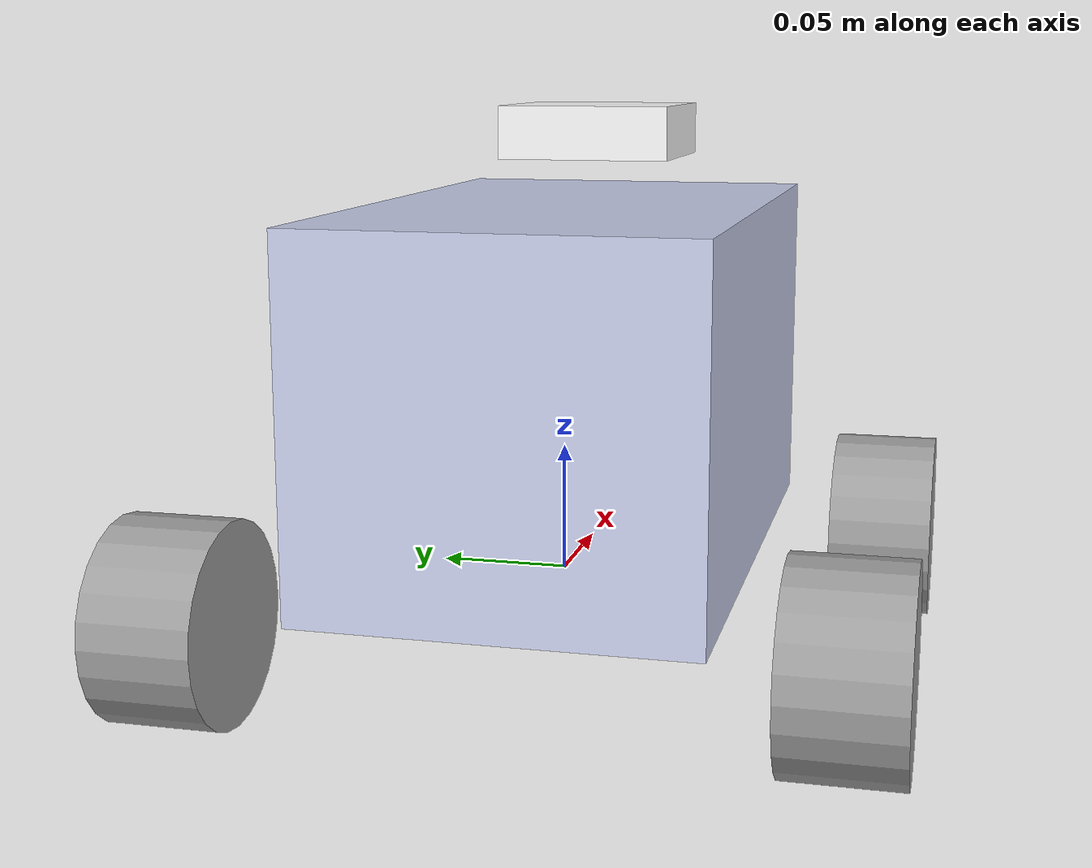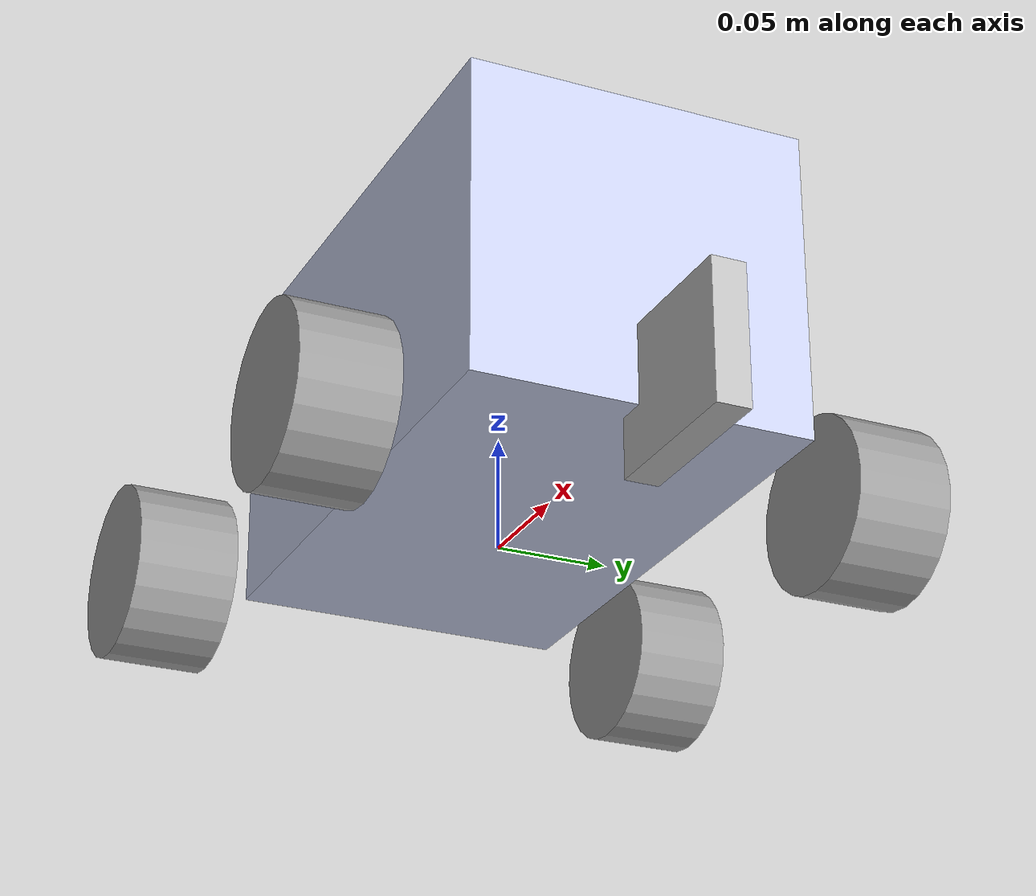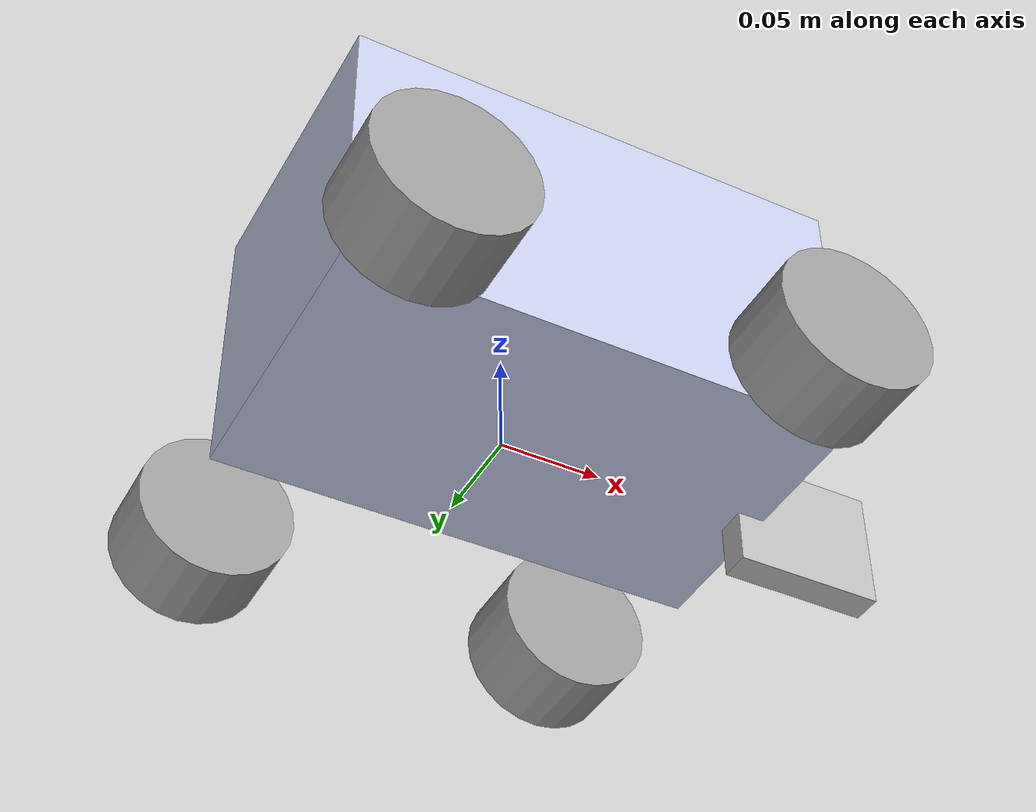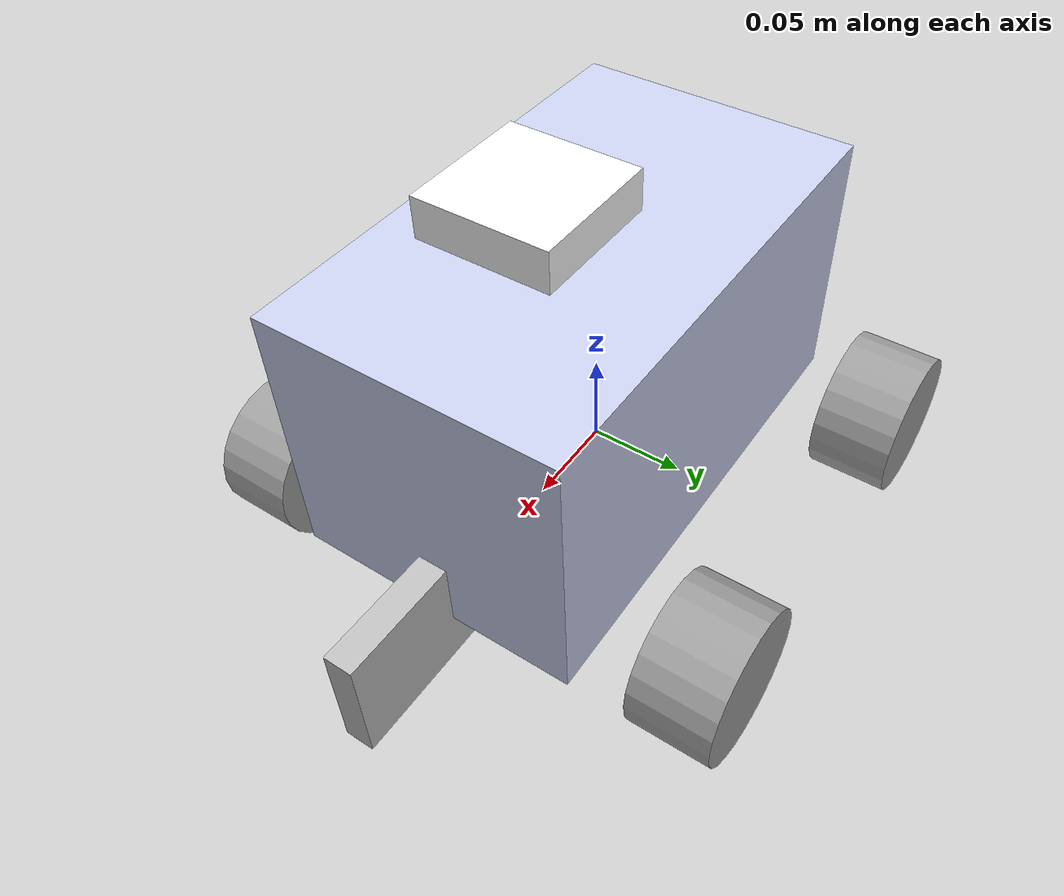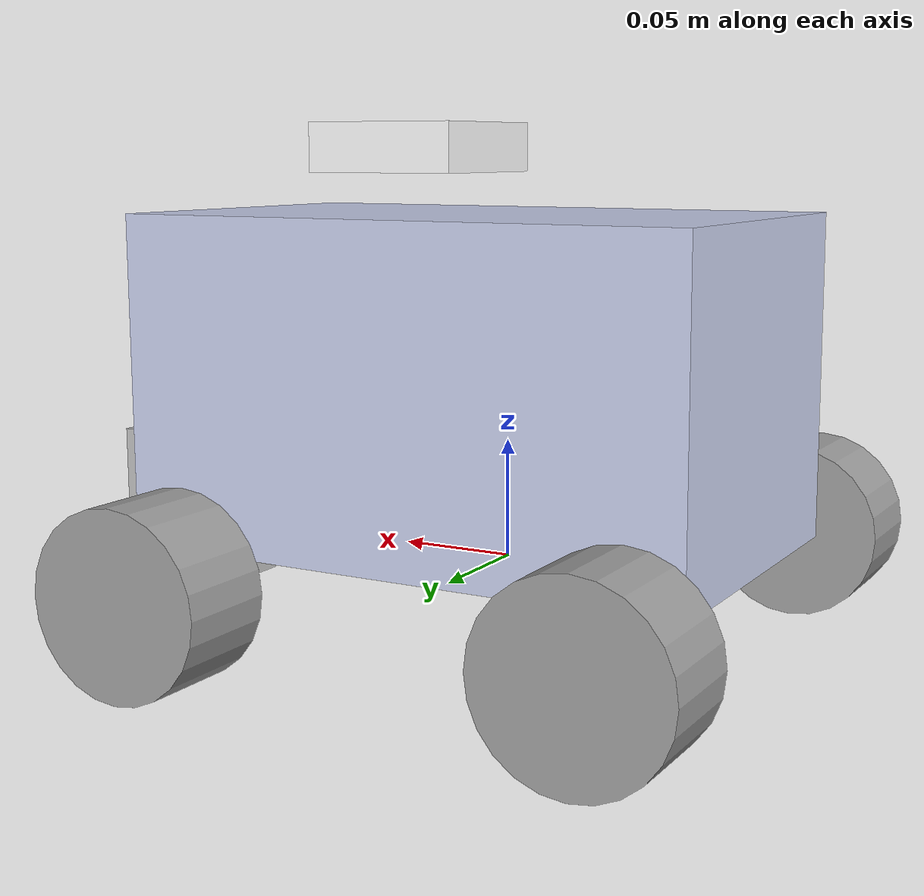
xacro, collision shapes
<?xml version="1.0"?>
<robot name="rover" xmlns:xacro="http://www.ros.org/wiki/xacro">
  <xacro:property name="mesh_dir" value="package://rover_description/meshes" />
  <xacro:property name="effort" value="100.0" />
  <xacro:property name="velocity" value="10.0" />
  <material name="mat_cad1eeff">
    <color rgba="0.792157 0.819608 0.933333 1" />
  </material>
  <material name="mat_a0a0a0ff">
    <color rgba="0.627451 0.627451 0.627451 1" />
  </material>
  <material name="mat_bfbfbfff">
    <color rgba="0.74902 0.74902 0.74902 1" />
  </material>
  <material name="mat_ffffffff">
    <color rgba="1 1 1 1" />
  </material>
  <link name="base_link">
    <inertial>
      <origin xyz="0.0123006 -0.000458994 0.0522336" rpy="0 0 0" />
      <mass value="4.64525" />
      <inertia ixx="0.0172817" iyy="0.0367358" izz="0.0356348" ixy="0.000552433" iyz="-0.000184288" ixz="-0.00178452" />
    </inertial>
    <visual>
      <origin xyz="-0.106381 0.0202749 0.00707771" rpy="1.5708 0 0" />
      <geometry>
        <mesh filename="${mesh_dir}/base_link_0_Body1.stl" scale="0.001 0.001 0.001" />
      </geometry>
      <material name="mat_cad1eeff" />
    </visual>
    <visual>
      <origin xyz="-0.106365 0.0202749 0.00711236" rpy="1.5708 0 0" />
      <geometry>
        <mesh filename="${mesh_dir}/base_link_1_Body2.stl" scale="0.001 0.001 0.001" />
      </geometry>
      <material name="mat_cad1eeff" />
    </visual>
    <visual>
      <origin xyz="-0.106353 0.0202749 0.00711277" rpy="1.5708 0 0" />
      <geometry>
        <mesh filename="${mesh_dir}/base_link_2_Body3.stl" scale="0.001 0.001 0.001" />
      </geometry>
      <material name="mat_cad1eeff" />
    </visual>
    <collision>
      <origin xyz="0.0135527 0.00019914 0.075" rpy="0 0 0" />
      <geometry>
        <box size="0.25 0.15 0.14" />
      </geometry>
    </collision>
  </link>
  <link name="fore_right_wheel">
    <inertial>
      <origin xyz="0.000244648 -0.0199956 0.000342114" rpy="0 0 0" />
      <mass value="1.42445" />
      <inertia ixx="0.000704201" iyy="0.00102831" izz="0.000704247" ixy="-3.96608e-06" iyz="-5.54614e-06" ixz="6.79202e-08" />
    </inertial>
    <visual>
      <origin xyz="-0.202496 -0.013323  -0.140697" rpy="1.5708 0 0" />
      <geometry>
        <mesh filename="${mesh_dir}/fore_right_wheel_0_Body1.stl" scale="0.001 0.001 0.001" />
      </geometry>
      <material name="mat_a0a0a0ff" />
    </visual>
    <collision>
      <origin xyz="0.000244648 -0.0199956 0.000342114" rpy="-1.5708 0 0" />
      <geometry>
        <cylinder radius="0.0383466" length="0.0416094" />
      </geometry>
    </collision>
  </link>
  <link name="back_right_wheel">
    <inertial>
      <origin xyz="0.000593035 -0.0199879 0.000362408" rpy="0 0 0" />
      <mass value="1.42445" />
      <inertia ixx="0.000704437" iyy="0.00102806" izz="0.000704259" ixy="-9.61023e-06" iyz="-5.87289e-06" ixz="1.74247e-07" />
    </inertial>
    <visual>
      <origin xyz="-0.001558 -0.043074 -0.094972" rpy="1.5708 0 0" />
      <geometry>
        <mesh filename="${mesh_dir}/back_right_wheel_0_Body1.stl" scale="0.001 0.001 0.001" />
      </geometry>
      <material name="mat_a0a0a0ff" />
    </visual>
    <collision>
      <origin xyz="0.000593035 -0.0199879 0.000362408" rpy="-1.5708 0 0" />
      <geometry>
        <cylinder radius="0.0385866" length="0.0436277" />
      </geometry>
    </collision>
  </link>
  <link name="Component87">
    <inertial>
      <origin xyz="-0.00062017 0.0199904 -1.44118e-05" rpy="0 0 0" />
      <mass value="1.42445" />
      <inertia ixx="0.000704464" iyy="0.00102814" izz="0.000704153" ixy="-1.00512e-05" iyz="-2.33575e-07" ixz="7.24631e-09" />
    </inertial>
    <visual>
      <origin xyz="-0.227255 -0.014410 0.051350" rpy="1.5708 0 0" />
      <geometry>
        <mesh filename="${mesh_dir}/Component87_0_Body1.stl" scale="0.001 0.001 0.001" />
      </geometry>
      <material name="mat_a0a0a0ff" />
    </visual>
    <collision>
      <origin xyz="-0.00062017 0.0199904 -1.44118e-05" rpy="-1.5708 0 0" />
      <geometry>
        <cylinder radius="0.0386122" length="0.0424128" />
      </geometry>
    </collision>
  </link>
  <link name="back_left_wheel">
    <inertial>
      <origin xyz="-0.000613365 0.0199906 -1.39496e-05" rpy="0 0 0" />
      <mass value="1.42445" />
      <inertia ixx="0.000704457" iyy="0.00102815" izz="0.000704153" ixy="-9.94102e-06" iyz="-2.26086e-07" ixz="6.93693e-09" />
    </inertial>
    <visual>
      <origin xyz="-0.000613 0.019990 -0.020014" rpy="1.5708 0 0" />
      <geometry>
        <mesh filename="${mesh_dir}/back_left_wheel_0_Body1.stl" scale="0.001 0.001 0.001" />
      </geometry>
      <material name="mat_a0a0a0ff" />
    </visual>
    <collision>
      <origin xyz="-0.000613365 0.0199906 -1.39496e-05" rpy="-1.5708 0 0" />
      <geometry>
        <cylinder radius="0.0386058" length="0.0423856" />
      </geometry>
    </collision>
  </link>
  <link name="TetsuZakura_Knights_Robot_Tipper_v1">
    <inertial>
      <origin xyz="0.0168147 -0.00727659 0.00302082" rpy="0 0 0" />
      <mass value="0.0332101" />
      <inertia ixx="7.44212e-06" iyy="2.12315e-05" izz="1.50178e-05" ixy="1.26147e-07" iyz="2.32711e-08" ixz="1.60436e-06" />
    </inertial>
    <visual>
      <origin xyz="0.00209597 -0.00500086 -0.000628201" rpy="1.5708 0 0" />
      <geometry>
        <mesh filename="${mesh_dir}/TetsuZakura_Knights_Robot_Tipper_v1_0_Body1.stl" scale="0.001 0.001 0.001" />
      </geometry>
      <material name="mat_bfbfbfff" />
    </visual>
    <collision>
      <origin xyz="0.0167848 -0.0075 -0.00156427" rpy="0 0 0" />
      <geometry>
        <box size="0.0746807 0.01502 0.0616036" />
      </geometry>
    </collision>
  </link>
  <link name="Tilt_v1_1">
    <inertial>
      <origin xyz="5.6808e-06 -0.000207909 0.0133798" rpy="0 0 0" />
      <mass value="0.0458217" />
      <inertia ixx="3.55478e-06" iyy="3.55676e-06" izz="1.64288e-06" ixy="-5.41195e-11" iyz="-4.44089e-20" ixz="3.55271e-19" />
    </inertial>
    <visual>
      <origin xyz="-0.216262 0.04094 -0.0797522" rpy="1.5708 0 0" />
      <geometry>
        <mesh filename="${mesh_dir}/Tilt_v1_1_0_Body1.stl" scale="0.001 0.001 0.001" />
      </geometry>
      <material name="mat_a0a0a0ff" />
    </visual>
    <collision>
      <origin xyz="0 0 0.0133798" rpy="0 0 0" />
      <geometry>
        <box size="0.0154246 0.0154246 0.0267797" />
      </geometry>
    </collision>
  </link>
  <link name="lidar">
    <inertial>
      <origin xyz="3.42516e-05 0 0.00999994" rpy="0 0 0" />
      <mass value="0.557243" />
      <inertia ixx="0.000175968" iyy="0.000175966" izz="0.000314781" ixy="1.06581e-18" iyz="-3.55271e-19" ixz="4.75465e-07" />
    </inertial>
    <visual>
      <origin xyz="-0.152275 0.024138 -0.183619" rpy="1.5708 0 0" />
      <geometry>
        <mesh filename="${mesh_dir}/lidar_0_Body1.stl" scale="0.001 0.001 0.001" />
      </geometry>
      <material name="mat_ffffffff" />
    </visual>
    <collision>
      <origin xyz="3.42516e-05 0 0.00999994" rpy="0 0 0" />
      <geometry>
        <box size="0.0674498 0.0672445 0.0207108" />
      </geometry>
    </collision>
  </link>
  <link name="pan_v1">
    <inertial>
      <origin xyz="0 0.0025 0" rpy="0 0 0" />
      <mass value="0.002512" />
      <inertia ixx="1.86307e-08" iyy="2.67947e-08" izz="1.86307e-08" ixy="-5.55112e-21" iyz="-9.71445e-21" ixz="5.55112e-21" />
    </inertial>
    <visual>
      <origin xyz="-0.226267 0.0435 -0.101" rpy="1.5708 0 0" />
      <geometry>
        <mesh filename="${mesh_dir}/pan_v1_0_Body1.stl" scale="0.001 0.001 0.001" />
      </geometry>
      <material name="mat_a0a0a0ff" />
    </visual>
    <collision>
      <origin xyz="0 0.0025 0" rpy="0 0 0" />
      <geometry>
        <box size="0.00802 0.00502 0.00802" />
      </geometry>
    </collision>
  </link>
  <link name="Tilt_v1_2">
    <inertial>
      <origin xyz="0.000207249 -0.00728907 0.0133798" rpy="0 0 0" />
      <mass value="0.0458217" />
      <inertia ixx="3.55478e-06" iyy="3.55676e-06" izz="1.64288e-06" ixy="-5.41386e-11" iyz="-3.15498e-11" ixz="-1.15468e-09" />
    </inertial>
    <visual>
      <origin xyz="-0.21606 0.0338588 -0.0797522" rpy="1.5708 0 0" />
      <geometry>
        <mesh filename="${mesh_dir}/Tilt_v1_2_0_Body1.stl" scale="0.001 0.001 0.001" />
      </geometry>
      <material name="mat_a0a0a0ff" />
    </visual>
    <collision>
      <origin xyz="0.00021293 -0.00749698 0.0133798" rpy="0 0 0" />
      <geometry>
        <box size="0.0154408 0.0154251 0.0267887" />
      </geometry>
    </collision>
  </link>
  <link name="camera">
    <inertial>
      <origin xyz="0 0 0" rpy="0 0 0" />
      <mass value="0.0023107" />
      <inertia ixx="5.77544e-08" iyy="3.52587e-08" izz="2.40698e-08" ixy="6.15121e-10" iyz="4.87414e-12" ixz="-2.05022e-11" />
    </inertial>
    <visual>
      <origin xyz="-0.240229 0.0739215 -0.156173" rpy="1.5708 0 0" />
      <geometry>
        <mesh filename="${mesh_dir}/camera_0_Body1.stl" scale="0.001 0.001 0.001" />
      </geometry>
      <material name="mat_ffffffff" />
    </visual>
  </link>
  <joint name="fore_right_revolute_joint" type="continuous">
    <parent link="base_link" />
    <child link="fore_right_wheel" />
    <origin xyz="0.0961302 -0.100769 9.5969e-05" rpy="0 0 0" />
    <axis xyz="0 1 0" />
    <dynamics damping="0.01" friction="0.0" />
    <limit effort="${effort}" velocity="${velocity}" />
  </joint>
  <joint name="rare_right_revolute_joint" type="continuous">
    <parent link="base_link" />
    <child link="back_right_wheel" />
    <origin xyz="-0.0933182 -0.100426 -0.000258081" rpy="0 0 0" />
    <axis xyz="0 1 0" />
    <dynamics damping="0.01" friction="0.0" />
    <limit effort="${effort}" velocity="${velocity}" />
  </joint>
  <joint name="fore_left_revolute_joint" type="continuous">
    <parent link="base_link" />
    <child link="Component87" />
    <origin xyz="0.0941321 0.101105 0.00032375" rpy="0 0 0" />
    <axis xyz="0 1 0" />
    <dynamics damping="0.01" friction="0.0" />
    <limit effort="${effort}" velocity="${velocity}" />
  </joint>
  <joint name="rare_left_revolute_joint" type="continuous">
    <parent link="base_link" />
    <child link="back_left_wheel" />
    <origin xyz="-0.0969441 0.10009 -0.000161638" rpy="0 0 0" />
    <axis xyz="0 1 0" />
    <dynamics damping="0.01" friction="0.0" />
    <limit effort="${effort}" velocity="${velocity}" />
  </joint>
  <joint name="tipper_revolute_joint" type="fixed">
    <parent link="base_link" />
    <child link="TetsuZakura_Knights_Robot_Tipper_v1" />
    <origin xyz="0.145412 0.0119474 0.0109593" rpy="0 0 0" />
  </joint>
  <joint name="pan_revolute_joint" type="fixed">
    <parent link="base_link" />
    <child link="Tilt_v1_1" />
    <origin xyz="0.123549 -0.0407343 0.0678237" rpy="0 0 0" />
  </joint>
  <joint name="lidar_revolute_joint" type="fixed">
    <parent link="base_link" />
    <child link="lidar" />
    <origin xyz="0.044463 -0.00386306 0.162039" rpy="0 0 0" />
  </joint>
  <joint name="stepper_revolute_joint" type="fixed">
    <parent link="base_link" />
    <child link="pan_v1" />
    <origin xyz="-0.00947576 0.0437833 0.0789328" rpy="0 0 0" />
  </joint>
  <joint name="tilt_revolute_joint" type="fixed">
    <parent link="Tilt_v1_1" />
    <child link="Tilt_v1_2" />
    <origin xyz="0.000204849 -0.0074972 0.0267597" rpy="0 0 0" />
  </joint>
  <joint name="camera_rigid_joint" type="fixed">
    <parent link="base_link" />
    <child link="camera" />
    <origin xyz="0.132417 -0.0536466 0.114593" rpy="0 0 0" />
  </joint>
  <xacro:include filename="$(find rover_description)/urdf/rover.gazebo.xacro" />
</robot>
